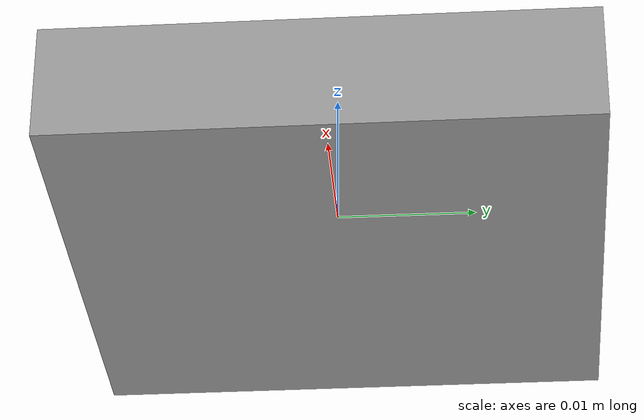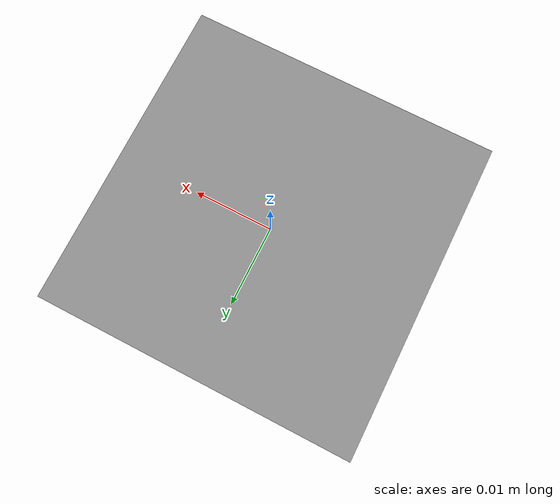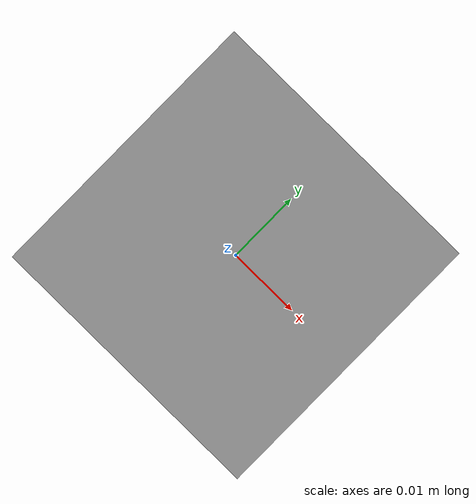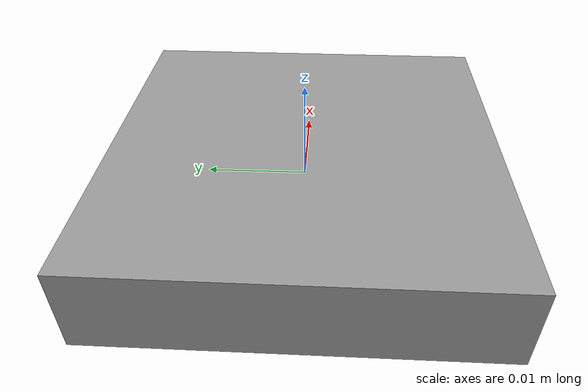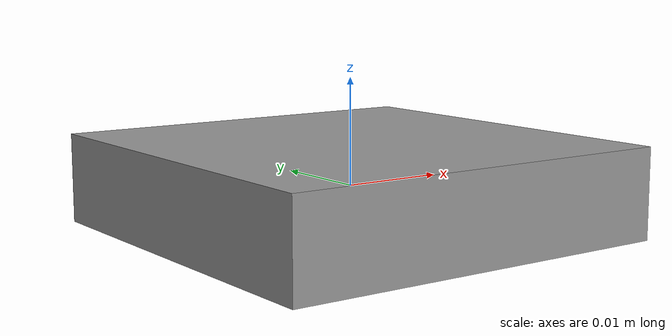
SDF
<?xml version="1.0" ?>
<sdf version="1.5">

  <!--3DR GPS-->
  <model name="3DR_gps_mag">

    <link name="link">

      <inertial>
        <mass>0.0168</mass>
        <inertia>
          <ixx>2.12275e-06</ixx>
          <iyy>2.12275e-06</iyy>
          <izz>4.0432e-06</izz>
        </inertia>
      </inertial>

      <visual name="visual">
        <geometry>
          <box>
            <size>0.038 0.038 0.0085</size>
          </box>
        </geometry>
        <material>
            <script>
              <uri>file://media/materials/scripts/gazebo.material</uri>
              <name>Gazebo/Grey</name>
            </script>
        </material>
      </visual>

      <collision name="collision">
        <geometry>
          <box>
            <size>0.038 0.038 0.0085</size>
          </box>
        </geometry>
      </collision>

      <sensor name="ublox-neo-7M" type="gps">
        <pose>0 0 0 0 0 0</pose>
        <update_rate>10.0</update_rate>
        <always_on>true</always_on>
        <gps>
          <position_sensing>
            <horizontal>
              <noise type="gaussian_quantized">
                <mean>0</mean>
                <stddev>1</stddev>
                <bias_mean>3</bias_mean>
                <bias_stddev>1</bias_stddev>
                <precision>0.5</precision>
              </noise>
            </horizontal>
            <vertical>
              <noise type="gaussian_quantized">
                <mean>0</mean>
                <stddev>1</stddev>
                <bias_mean>3</bias_mean>
                <bias_stddev>1</bias_stddev>
                <precision>1.0</precision>
              </noise>
            </vertical>
          </position_sensing>
          <velocity_sensing>
            <horizontal>
              <noise type="gaussian_quantized">
                <mean>0</mean>
                <stddev>0.1</stddev>
                <bias_mean>0.1</bias_mean>
                <bias_stddev>0.1</bias_stddev>
                <precision>0.1</precision>
              </noise>
            </horizontal>
            <vertical>
              <noise type="gaussian_quantized">
                <mean>0</mean>
                <stddev>0.2</stddev>
                <bias_mean>0.2</bias_mean>
                <bias_stddev>0.2</bias_stddev>
                <precision>0.2</precision>
              </noise>
            </vertical>
          </velocity_sensing>
        </gps>
        <plugin name="gps_plugin" filename="libgazebo_gps_plugin.so">
          <robotNamespace></robotNamespace>
          <gpsNoise>true</gpsNoise>
          <gpsXYRandomWalk>2.0</gpsXYRandomWalk>
          <gpsZRandomWalk>4.0</gpsZRandomWalk>
          <gpsXYNoiseDensity>2.0e-4</gpsXYNoiseDensity>
          <gpsZNoiseDensity>4.0e-4</gpsZNoiseDensity>
          <gpsVXYNoiseDensity>0.2</gpsVXYNoiseDensity>
          <gpsVZNoiseDensity>0.4</gpsVZNoiseDensity>
        </plugin>
      </sensor>

      <sensor name="HMC5883L" type="magnetometer">
        <always_on>true</always_on>
        <update_rate>50</update_rate>
        <magnetometer>
          <x>
            <noise type="gaussian">
             <mean>0</mean>
             <stddev>0.0002</stddev>
             <bias_mean>7.5e-06</bias_mean>
             <bias_stddev>8e-07</bias_stddev>
            </noise>
          </x>
          <y>
            <noise type="gaussian">
             <mean>0</mean>
             <stddev>0.0002</stddev>
             <bias_mean>7.5e-06</bias_mean>
             <bias_stddev>8e-07</bias_stddev>
            </noise>
          </y>
          <z>
            <noise type="gaussian">
             <mean>0</mean>
             <stddev>0.0002</stddev>
             <bias_mean>7.5e-06</bias_mean>
             <bias_stddev>8e-07</bias_stddev>
            </noise>
          </z>
        </magnetometer>

      </sensor>

    </link>

  </model>

</sdf>

<!-- vim: set et ft=xml fenc=utf-8 ff=unix sts=0 sw=2 ts=2 : -->
